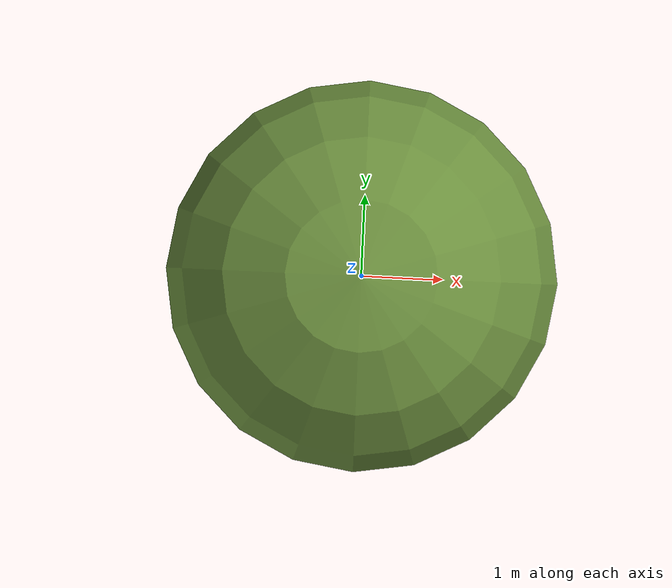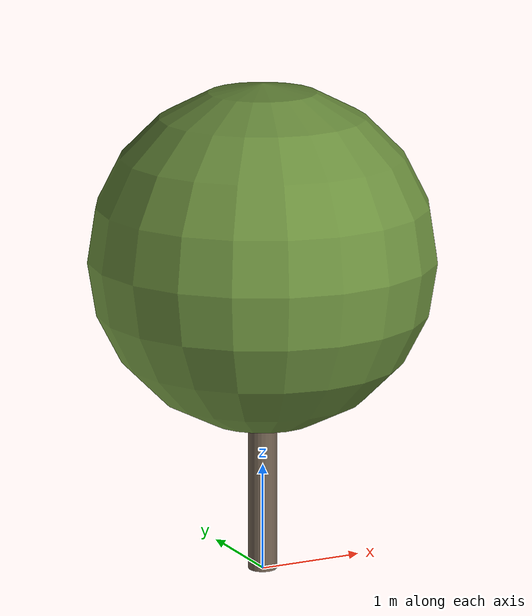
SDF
<?xml version="1.0" ?>
<sdf version="1.10">
  <model name="olivier_provence_10">
    <static>true</static>

    <!-- Tronc -->
    <link name="trunk">
      <pose>0 0 1.2401508516320554 0 0 0</pose>
      <visual name="trunk_visual">
        <geometry>
          <cylinder>
            <radius>0.1330323338083663</radius>
            <length>2.480301703264111</length>
          </cylinder>
        </geometry>
        <material>
          <ambient>0.42 0.36 0.30 1</ambient>
          <diffuse>0.42 0.36 0.30 1</diffuse>
          <specular>0.1 0.1 0.1 1</specular>
        </material>
      </visual>
      <collision name="trunk_collision">
        <geometry>
          <cylinder>
            <radius>0.1330323338083663</radius>
            <length>2.480301703264111</length>
          </cylinder>
        </geometry>
      </collision>
    </link>

    <!-- Feuillage -->
    <link name="crown">
      <pose>0 0 2.9623656630879758 0 0 0</pose>
      <visual name="crown_visual">
        <geometry>
          <sphere>
              <radius>1.60687986607955</radius>
            </sphere>
        </geometry>
        <material>
          <ambient>0.42 0.56 0.24 1</ambient>
          <diffuse>0.42 0.56 0.24 1</diffuse>
          <specular>0.1 0.1 0.1 1</specular>
        </material>
      </visual>
      <collision name="crown_collision">
        <geometry>
          <sphere>
            <radius>1.2855038928636402</radius>
          </sphere>
        </geometry>
      </collision>
    </link>

    <!-- Joint tronc-feuillage -->
    <joint name="trunk_crown_joint" type="fixed">
      <parent>trunk</parent>
      <child>crown</child>
    </joint>

  </model>
</sdf>
